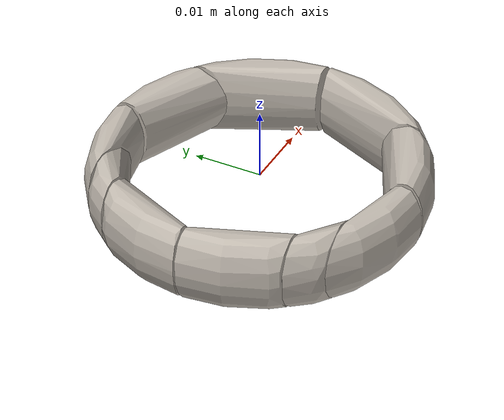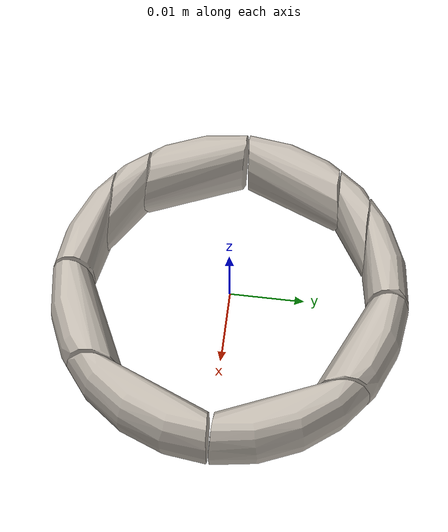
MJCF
<mujoco model="dounut">
  <asset>
    <mesh file="meshes/dounut_meshes/dounut_mesh_part_0.stl" scale="0.2 0.2 0.6" name="dounut_mesh_part_0"/>
    <mesh file="meshes/dounut_meshes/dounut_mesh_part_1.stl" scale="0.2 0.2 0.6" name="dounut_mesh_part_1"/>
    <mesh file="meshes/dounut_meshes/dounut_mesh_part_2.stl" scale="0.2 0.2 0.6" name="dounut_mesh_part_2"/>
    <mesh file="meshes/dounut_meshes/dounut_mesh_part_3.stl" scale="0.2 0.2 0.6" name="dounut_mesh_part_3"/>
    <mesh file="meshes/dounut_meshes/dounut_mesh_part_4.stl" scale="0.2 0.2 0.6" name="dounut_mesh_part_4"/>
    <mesh file="meshes/dounut_meshes/dounut_mesh_part_5.stl" scale="0.2 0.2 0.6" name="dounut_mesh_part_5"/>
    <mesh file="meshes/dounut_meshes/dounut_mesh_part_6.stl" scale="0.2 0.2 0.6" name="dounut_mesh_part_6"/>
    <mesh file="meshes/dounut_meshes/dounut_mesh_part_7.stl" scale="0.2 0.2 0.6" name="dounut_mesh_part_7"/>
    <mesh file="meshes/dounut_meshes/dounut_mesh_part_8.stl" scale="0.2 0.2 0.6" name="dounut_mesh_part_8"/>
    <mesh file="meshes/dounut_meshes/dounut_mesh_part_9.stl" scale="0.2 0.2 0.6" name="dounut_mesh_part_9"/>
    <texture file="../textures/dounut_1.png" name="tex-dounut" />
    <material name="dounut_mat" reflectance="0.7" texrepeat="15 15" texture="tex-dounut" texuniform="true"/>
  </asset>
  <worldbody>
    <body>
      <body name="collision">
        <geom condim="4" density="100" friction="1.5 0.3 0.1" group="1" mesh="dounut_mesh_part_0" pos="0 0 0" material="dounut_mat" solimp="0.998 0.998 0.001" solref="0.002 1" type="mesh"/>
        <geom condim="4" density="100" friction="1.5 0.3 0.1" group="1" mesh="dounut_mesh_part_1" pos="0 0 0" material="dounut_mat" solimp="0.998 0.998 0.001" solref="0.002 1" type="mesh"/>
        <geom condim="4" density="100" friction="1.5 0.3 0.1" group="1" mesh="dounut_mesh_part_2" pos="0 0 0" material="dounut_mat" solimp="0.998 0.998 0.001" solref="0.002 1" type="mesh"/>
        <geom condim="4" density="100" friction="1.5 0.3 0.1" group="1" mesh="dounut_mesh_part_3" pos="0 0 0" material="dounut_mat" solimp="0.998 0.998 0.001" solref="0.002 1" type="mesh"/>
        <geom condim="4" density="100" friction="1.5 0.3 0.1" group="1" mesh="dounut_mesh_part_4" pos="0 0 0" material="dounut_mat" solimp="0.998 0.998 0.001" solref="0.002 1" type="mesh"/>
        <geom condim="4" density="100" friction="1.5 0.3 0.1" group="1" mesh="dounut_mesh_part_5" pos="0 0 0" material="dounut_mat" solimp="0.998 0.998 0.001" solref="0.002 1" type="mesh"/>
        <geom condim="4" density="100" friction="1.5 0.3 0.1" group="1" mesh="dounut_mesh_part_6" pos="0 0 0" material="dounut_mat" solimp="0.998 0.998 0.001" solref="0.002 1" type="mesh"/>
        <geom condim="4" density="100" friction="1.5 0.3 0.1" group="1" mesh="dounut_mesh_part_7" pos="0 0 0" material="dounut_mat" solimp="0.998 0.998 0.001" solref="0.002 1" type="mesh"/>
        <geom condim="4" density="100" friction="1.5 0.3 0.1" group="1" mesh="dounut_mesh_part_8" pos="0 0 0" material="dounut_mat" solimp="0.998 0.998 0.001" solref="0.002 1" type="mesh"/>
        <geom condim="4" density="100" friction="1.5 0.3 0.1" group="1" mesh="dounut_mesh_part_9" pos="0 0 0" material="dounut_mat" solimp="0.998 0.998 0.001" solref="0.002 1" type="mesh"/>
      </body>
      <body name="visual">
        <geom conaffinity="0" contype="0" group="0" mass="0.0001" mesh="dounut_mesh_part_0" pos="0 0 0" rgba="0 1 0 1" type="mesh"/>
        <geom conaffinity="0" contype="0" group="0" mass="0.0001" mesh="dounut_mesh_part_1" pos="0 0 0" rgba="0 1 0 1" type="mesh"/>
        <geom conaffinity="0" contype="0" group="0" mass="0.0001" mesh="dounut_mesh_part_2" pos="0 0 0" rgba="0 1 0 1" type="mesh"/>
        <geom conaffinity="0" contype="0" group="0" mass="0.0001" mesh="dounut_mesh_part_3" pos="0 0 0" rgba="0 1 0 1" type="mesh"/>
        <geom conaffinity="0" contype="0" group="0" mass="0.0001" mesh="dounut_mesh_part_4" pos="0 0 0" rgba="0 1 0 1" type="mesh"/>
        <geom conaffinity="0" contype="0" group="0" mass="0.0001" mesh="dounut_mesh_part_5" pos="0 0 0" rgba="0 1 0 1" type="mesh"/>
        <geom conaffinity="0" contype="0" group="0" mass="0.0001" mesh="dounut_mesh_part_6" pos="0 0 0" rgba="0 1 0 1" type="mesh"/>
        <geom conaffinity="0" contype="0" group="0" mass="0.0001" mesh="dounut_mesh_part_7" pos="0 0 0" rgba="0 1 0 1" type="mesh"/>
        <geom conaffinity="0" contype="0" group="0" mass="0.0001" mesh="dounut_mesh_part_8" pos="0 0 0" rgba="0 1 0 1" type="mesh"/>
        <geom conaffinity="0" contype="0" group="0" mass="0.0001" mesh="dounut_mesh_part_9" pos="0 0 0" rgba="0 1 0 1" type="mesh"/>
      </body>
      <site name="bottom_site" pos="0 0 -0.06" rgba="0 0 0 0" size="0.005"/>
      <site name="top_site" pos="0 0 0.04" rgba="0 0 0 0" size="0.005"/>
      <site name="horizontal_radius_site" pos="0.025 0.025 0" rgba="0 0 0 0" size="0.005"/>
    </body>
  </worldbody>
</mujoco>
